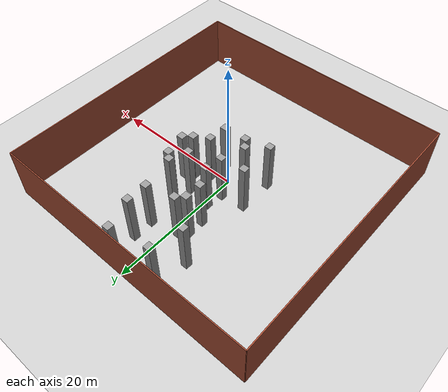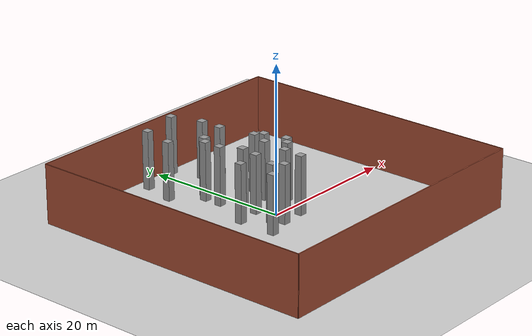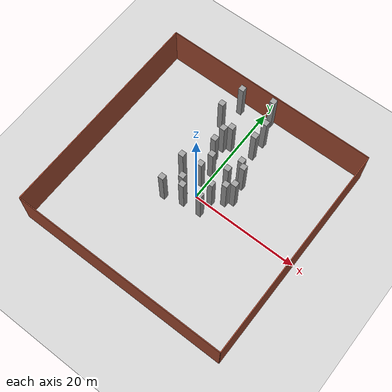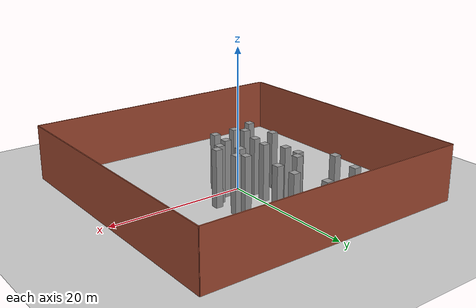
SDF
<sdf version="1.7">
 <world name="default">
  <model name="ground_plane">
   <static>1</static>
   <link name="link">
    <collision name="collision">
     <geometry><plane><normal>0 0 1</normal><size>100 100</size></plane></geometry>
     <surface>
      <contact><collide_bitmask>65535</collide_bitmask></contact>
      <friction><ode><mu>100</mu><mu2>50</mu2></ode></friction>
     </surface>
    </collision>
    <visual name="visual">
     <cast_shadows>0</cast_shadows>
     <geometry><plane><normal>0 0 1</normal><size>100 100</size></plane></geometry>
     <material>
      <script><uri>file://media/materials/scripts/gazebo.material</uri><name>Gazebo/Grey</name></script>
     </material>
    </visual>
   </link>
  </model>
  <model name="sim_room_square">
   <link name="Wall_14">
    <collision name="Wall_14_Collision">
     <geometry><box><size>40 0.15 8</size></box></geometry>
     <pose>0 0 4 0 -0 0</pose>
    </collision>
    <visual name="Wall_14_Visual">
     <pose>0 0 4 0 -0 0</pose>
     <geometry><box><size>40 0.15 8</size></box></geometry>
     <material>
      <script><uri>file://media/materials/scripts/gazebo.material</uri><name>Gazebo/Bricks</name></script>
      <ambient>1 1 1 1</ambient>
     </material>
     <meta><layer>0</layer></meta>
    </visual>
    <pose>20 -0 0 0 -0 -1.5708</pose>
   </link>
   <link name="Wall_15">
    <collision name="Wall_15_Collision">
     <geometry><box><size>40 0.15 8</size></box></geometry>
     <pose>0 0 4 0 -0 0</pose>
    </collision>
    <visual name="Wall_15_Visual">
     <pose>0 0 4 0 -0 0</pose>
     <geometry><box><size>40 0.15 8</size></box></geometry>
     <material>
      <script><uri>file://media/materials/scripts/gazebo.material</uri><name>Gazebo/Bricks</name></script>
      <ambient>1 1 1 1</ambient>
     </material>
     <meta><layer>0</layer></meta>
    </visual>
    <pose>0 -20 0 0 -0 3.14159</pose>
   </link>
   <link name="Wall_16">
    <collision name="Wall_16_Collision">
     <geometry><box><size>40 0.15 8</size></box></geometry>
     <pose>0 0 4 0 -0 0</pose>
    </collision>
    <visual name="Wall_16_Visual">
     <pose>0 0 4 0 -0 0</pose>
     <geometry><box><size>40 0.15 8</size></box></geometry>
     <material>
      <script><uri>file://media/materials/scripts/gazebo.material</uri><name>Gazebo/Bricks</name></script>
      <ambient>1 1 1 1</ambient>
     </material>
     <meta><layer>0</layer></meta>
    </visual>
    <pose>-20 -0 0 0 -0 1.5708</pose>
   </link>
   <link name="Wall_19">
    <collision name="Wall_19_Collision">
     <geometry><box><size>40 0.15 8</size></box></geometry>
     <pose>0 0 4 0 -0 0</pose>
    </collision>
    <visual name="Wall_19_Visual">
     <pose>0 0 4 0 -0 0</pose>
     <geometry><box><size>40 0.15 8</size></box></geometry>
     <material>
      <script><uri>file://media/materials/scripts/gazebo.material</uri><name>Gazebo/Bricks</name></script>
      <ambient>1 1 1 1</ambient>
     </material>
     <meta><layer>0</layer></meta>
    </visual>
    <pose>0 20 0 0 -0 0</pose>
   </link>
   <static>1</static>
  </model>
  <model name="unit_box_static95_clone_52_clone_clone">
   <link name="link">
    <inertial>
     <mass>1</mass>
     <inertia>
      <ixx>0.166667</ixx>
      <ixy>0</ixy>
      <ixz>0</ixz>
      <iyy>0.166667</iyy>
      <iyz>0</iyz>
      <izz>0.166667</izz>
     </inertia>
    </inertial>
    <visual name="visual">
     <geometry><box><size>1 1 8</size></box></geometry>
     <material>
      <script><name>Gazebo/Grey</name><uri>file://media/materials/scripts/gazebo.material</uri></script>
      <shader type="pixel"/>
     </material>
    </visual>
    <collision name="collision">
     <geometry><box><size>1 1 8</size></box></geometry>
     <surface>
      <friction>
       <ode><mu>1</mu><mu2>1</mu2><fdir1>0 0 0</fdir1><slip1>0</slip1><slip2>0</slip2></ode>
       <torsional>
        <coefficient>1</coefficient>
        <patch_radius>0</patch_radius>
        <surface_radius>0</surface_radius>
        <use_patch_radius>1</use_patch_radius>
        <ode><slip>0</slip></ode>
       </torsional>
      </friction>
      <bounce><restitution_coefficient>0</restitution_coefficient><threshold>1e+06</threshold></bounce>
      <contact>
       <collide_without_contact>0</collide_without_contact>
       <collide_without_contact_bitmask>1</collide_without_contact_bitmask>
       <collide_bitmask>1</collide_bitmask>
       <ode>
        <soft_cfm>0</soft_cfm>
        <soft_erp>0.2</soft_erp>
        <kp>1e+13</kp>
        <kd>1</kd>
        <max_vel>0.01</max_vel>
        <min_depth>0</min_depth>
       </ode>
       <bullet>
        <split_impulse>1</split_impulse>
        <split_impulse_penetration_threshold>-0.01</split_impulse_penetration_threshold>
        <soft_cfm>0</soft_cfm>
        <soft_erp>0.2</soft_erp>
        <kp>1e+13</kp>
        <kd>1</kd>
       </bullet>
      </contact>
     </surface>
    </collision>
   </link>
   <static>1</static>
   <pose>3 4.46583 4 0 -0 0</pose>
  </model>
  <model name="unit_box_static95_clone_52_clone_clone_0">
   <link name="link">
    <inertial>
     <mass>1</mass>
     <inertia>
      <ixx>0.166667</ixx>
      <ixy>0</ixy>
      <ixz>0</ixz>
      <iyy>0.166667</iyy>
      <iyz>0</iyz>
      <izz>0.166667</izz>
     </inertia>
    </inertial>
    <visual name="visual">
     <geometry><box><size>1 1 8</size></box></geometry>
     <material>
      <script><name>Gazebo/Grey</name><uri>file://media/materials/scripts/gazebo.material</uri></script>
      <shader type="pixel"/>
     </material>
    </visual>
    <collision name="collision">
     <geometry><box><size>1 1 8</size></box></geometry>
     <surface>
      <friction>
       <ode><mu>1</mu><mu2>1</mu2><fdir1>0 0 0</fdir1><slip1>0</slip1><slip2>0</slip2></ode>
       <torsional>
        <coefficient>1</coefficient>
        <patch_radius>0</patch_radius>
        <surface_radius>0</surface_radius>
        <use_patch_radius>1</use_patch_radius>
        <ode><slip>0</slip></ode>
       </torsional>
      </friction>
      <bounce><restitution_coefficient>0</restitution_coefficient><threshold>1e+06</threshold></bounce>
      <contact>
       <collide_without_contact>0</collide_without_contact>
       <collide_without_contact_bitmask>1</collide_without_contact_bitmask>
       <collide_bitmask>1</collide_bitmask>
       <ode>
        <soft_cfm>0</soft_cfm>
        <soft_erp>0.2</soft_erp>
        <kp>1e+13</kp>
        <kd>1</kd>
        <max_vel>0.01</max_vel>
        <min_depth>0</min_depth>
       </ode>
       <bullet>
        <split_impulse>1</split_impulse>
        <split_impulse_penetration_threshold>-0.01</split_impulse_penetration_threshold>
        <soft_cfm>0</soft_cfm>
        <soft_erp>0.2</soft_erp>
        <kp>1e+13</kp>
        <kd>1</kd>
       </bullet>
      </contact>
     </surface>
    </collision>
   </link>
   <static>1</static>
   <pose>-0.575145 5 4 0 -0 0</pose>
  </model>
  <model name="unit_box_static95_clone_52_clone_clone_1">
   <link name="link">
    <inertial>
     <mass>1</mass>
     <inertia>
      <ixx>0.166667</ixx>
      <ixy>0</ixy>
      <ixz>0</ixz>
      <iyy>0.166667</iyy>
      <iyz>0</iyz>
      <izz>0.166667</izz>
     </inertia>
    </inertial>
    <visual name="visual">
     <geometry><box><size>1 1 8</size></box></geometry>
     <material>
      <script><name>Gazebo/Grey</name><uri>file://media/materials/scripts/gazebo.material</uri></script>
      <shader type="pixel"/>
     </material>
    </visual>
    <collision name="collision">
     <geometry><box><size>1 1 8</size></box></geometry>
     <surface>
      <friction>
       <ode><mu>1</mu><mu2>1</mu2><fdir1>0 0 0</fdir1><slip1>0</slip1><slip2>0</slip2></ode>
       <torsional>
        <coefficient>1</coefficient>
        <patch_radius>0</patch_radius>
        <surface_radius>0</surface_radius>
        <use_patch_radius>1</use_patch_radius>
        <ode><slip>0</slip></ode>
       </torsional>
      </friction>
      <bounce><restitution_coefficient>0</restitution_coefficient><threshold>1e+06</threshold></bounce>
      <contact>
       <collide_without_contact>0</collide_without_contact>
       <collide_without_contact_bitmask>1</collide_without_contact_bitmask>
       <collide_bitmask>1</collide_bitmask>
       <ode>
        <soft_cfm>0</soft_cfm>
        <soft_erp>0.2</soft_erp>
        <kp>1e+13</kp>
        <kd>1</kd>
        <max_vel>0.01</max_vel>
        <min_depth>0</min_depth>
       </ode>
       <bullet>
        <split_impulse>1</split_impulse>
        <split_impulse_penetration_threshold>-0.01</split_impulse_penetration_threshold>
        <soft_cfm>0</soft_cfm>
        <soft_erp>0.2</soft_erp>
        <kp>1e+13</kp>
        <kd>1</kd>
       </bullet>
      </contact>
     </surface>
    </collision>
   </link>
   <static>1</static>
   <pose>-2 7.57838 4 0 -0 0</pose>
  </model>
  <model name="unit_box_static95_clone_52_clone_clone_12">
   <link name="link">
    <inertial>
     <mass>1</mass>
     <inertia>
      <ixx>0.166667</ixx>
      <ixy>0</ixy>
      <ixz>0</ixz>
      <iyy>0.166667</iyy>
      <iyz>0</iyz>
      <izz>0.166667</izz>
     </inertia>
    </inertial>
    <visual name="visual">
     <geometry><box><size>1 1 8</size></box></geometry>
     <material>
      <script><name>Gazebo/Grey</name><uri>file://media/materials/scripts/gazebo.material</uri></script>
      <shader type="pixel"/>
     </material>
    </visual>
    <collision name="collision">
     <geometry><box><size>1 1 8</size></box></geometry>
     <surface>
      <friction>
       <ode><mu>1</mu><mu2>1</mu2><fdir1>0 0 0</fdir1><slip1>0</slip1><slip2>0</slip2></ode>
       <torsional>
        <coefficient>1</coefficient>
        <patch_radius>0</patch_radius>
        <surface_radius>0</surface_radius>
        <use_patch_radius>1</use_patch_radius>
        <ode><slip>0</slip></ode>
       </torsional>
      </friction>
      <bounce><restitution_coefficient>0</restitution_coefficient><threshold>1e+06</threshold></bounce>
      <contact>
       <collide_without_contact>0</collide_without_contact>
       <collide_without_contact_bitmask>1</collide_without_contact_bitmask>
       <collide_bitmask>1</collide_bitmask>
       <ode>
        <soft_cfm>0</soft_cfm>
        <soft_erp>0.2</soft_erp>
        <kp>1e+13</kp>
        <kd>1</kd>
        <max_vel>0.01</max_vel>
        <min_depth>0</min_depth>
       </ode>
       <bullet>
        <split_impulse>1</split_impulse>
        <split_impulse_penetration_threshold>-0.01</split_impulse_penetration_threshold>
        <soft_cfm>0</soft_cfm>
        <soft_erp>0.2</soft_erp>
        <kp>1e+13</kp>
        <kd>1</kd>
       </bullet>
      </contact>
     </surface>
    </collision>
   </link>
   <static>1</static>
   <pose>-2 10 4 0 -0 0</pose>
  </model>
  <model name="unit_box_static95_clone_52_clone_clone_14">
   <link name="link">
    <inertial>
     <mass>1</mass>
     <inertia>
      <ixx>0.166667</ixx>
      <ixy>0</ixy>
      <ixz>0</ixz>
      <iyy>0.166667</iyy>
      <iyz>0</iyz>
      <izz>0.166667</izz>
     </inertia>
    </inertial>
    <visual name="visual">
     <geometry><box><size>1 1 8</size></box></geometry>
     <material>
      <script><name>Gazebo/Grey</name><uri>file://media/materials/scripts/gazebo.material</uri></script>
      <shader type="pixel"/>
     </material>
    </visual>
    <collision name="collision">
     <geometry><box><size>1 1 8</size></box></geometry>
     <surface>
      <friction>
       <ode><mu>1</mu><mu2>1</mu2><fdir1>0 0 0</fdir1><slip1>0</slip1><slip2>0</slip2></ode>
       <torsional>
        <coefficient>1</coefficient>
        <patch_radius>0</patch_radius>
        <surface_radius>0</surface_radius>
        <use_patch_radius>1</use_patch_radius>
        <ode><slip>0</slip></ode>
       </torsional>
      </friction>
      <bounce><restitution_coefficient>0</restitution_coefficient><threshold>1e+06</threshold></bounce>
      <contact>
       <collide_without_contact>0</collide_without_contact>
       <collide_without_contact_bitmask>1</collide_without_contact_bitmask>
       <collide_bitmask>1</collide_bitmask>
       <ode>
        <soft_cfm>0</soft_cfm>
        <soft_erp>0.2</soft_erp>
        <kp>1e+13</kp>
        <kd>1</kd>
        <max_vel>0.01</max_vel>
        <min_depth>0</min_depth>
       </ode>
       <bullet>
        <split_impulse>1</split_impulse>
        <split_impulse_penetration_threshold>-0.01</split_impulse_penetration_threshold>
        <soft_cfm>0</soft_cfm>
        <soft_erp>0.2</soft_erp>
        <kp>1e+13</kp>
        <kd>1</kd>
       </bullet>
      </contact>
     </surface>
    </collision>
   </link>
   <static>1</static>
   <pose>5.58229 3 4 0 -0 0</pose>
  </model>
  <model name="unit_box_static95_clone_52_clone_clone_19">
   <link name="link">
    <inertial>
     <mass>1</mass>
     <inertia>
      <ixx>0.166667</ixx>
      <ixy>0</ixy>
      <ixz>0</ixz>
      <iyy>0.166667</iyy>
      <iyz>0</iyz>
      <izz>0.166667</izz>
     </inertia>
    </inertial>
    <visual name="visual">
     <geometry><box><size>1 1 8</size></box></geometry>
     <material>
      <script><name>Gazebo/Grey</name><uri>file://media/materials/scripts/gazebo.material</uri></script>
      <shader type="pixel"/>
     </material>
    </visual>
    <collision name="collision">
     <geometry><box><size>1 1 8</size></box></geometry>
     <surface>
      <friction>
       <ode><mu>1</mu><mu2>1</mu2><fdir1>0 0 0</fdir1><slip1>0</slip1><slip2>0</slip2></ode>
       <torsional>
        <coefficient>1</coefficient>
        <patch_radius>0</patch_radius>
        <surface_radius>0</surface_radius>
        <use_patch_radius>1</use_patch_radius>
        <ode><slip>0</slip></ode>
       </torsional>
      </friction>
      <bounce><restitution_coefficient>0</restitution_coefficient><threshold>1e+06</threshold></bounce>
      <contact>
       <collide_without_contact>0</collide_without_contact>
       <collide_without_contact_bitmask>1</collide_without_contact_bitmask>
       <collide_bitmask>1</collide_bitmask>
       <ode>
        <soft_cfm>0</soft_cfm>
        <soft_erp>0.2</soft_erp>
        <kp>1e+13</kp>
        <kd>1</kd>
        <max_vel>0.01</max_vel>
        <min_depth>0</min_depth>
       </ode>
       <bullet>
        <split_impulse>1</split_impulse>
        <split_impulse_penetration_threshold>-0.01</split_impulse_penetration_threshold>
        <soft_cfm>0</soft_cfm>
        <soft_erp>0.2</soft_erp>
        <kp>1e+13</kp>
        <kd>1</kd>
       </bullet>
      </contact>
     </surface>
    </collision>
   </link>
   <static>1</static>
   <pose>-1.06932 -2.20283 4 0 -0 0</pose>
  </model>
  <model name="unit_box_static95_clone_52_clone_clone_21">
   <link name="link">
    <inertial>
     <mass>1</mass>
     <inertia>
      <ixx>0.166667</ixx>
      <ixy>0</ixy>
      <ixz>0</ixz>
      <iyy>0.166667</iyy>
      <iyz>0</iyz>
      <izz>0.166667</izz>
     </inertia>
    </inertial>
    <visual name="visual">
     <geometry><box><size>1 1 8</size></box></geometry>
     <material>
      <script><name>Gazebo/Grey</name><uri>file://media/materials/scripts/gazebo.material</uri></script>
      <shader type="pixel"/>
     </material>
    </visual>
    <collision name="collision">
     <geometry><box><size>1 1 8</size></box></geometry>
     <surface>
      <friction>
       <ode><mu>1</mu><mu2>1</mu2><fdir1>0 0 0</fdir1><slip1>0</slip1><slip2>0</slip2></ode>
       <torsional>
        <coefficient>1</coefficient>
        <patch_radius>0</patch_radius>
        <surface_radius>0</surface_radius>
        <use_patch_radius>1</use_patch_radius>
        <ode><slip>0</slip></ode>
       </torsional>
      </friction>
      <bounce><restitution_coefficient>0</restitution_coefficient><threshold>1e+06</threshold></bounce>
      <contact>
       <collide_without_contact>0</collide_without_contact>
       <collide_without_contact_bitmask>1</collide_without_contact_bitmask>
       <collide_bitmask>1</collide_bitmask>
       <ode>
        <soft_cfm>0</soft_cfm>
        <soft_erp>0.2</soft_erp>
        <kp>1e+13</kp>
        <kd>1</kd>
        <max_vel>0.01</max_vel>
        <min_depth>0</min_depth>
       </ode>
       <bullet>
        <split_impulse>1</split_impulse>
        <split_impulse_penetration_threshold>-0.01</split_impulse_penetration_threshold>
        <soft_cfm>0</soft_cfm>
        <soft_erp>0.2</soft_erp>
        <kp>1e+13</kp>
        <kd>1</kd>
       </bullet>
      </contact>
     </surface>
    </collision>
   </link>
   <static>1</static>
   <pose>-4.45541 -3.17541 4 0 -0 0</pose>
  </model>
  <model name="unit_box_static95_clone_52_clone_clone_46">
   <link name="link">
    <inertial>
     <mass>1</mass>
     <inertia>
      <ixx>0.166667</ixx>
      <ixy>0</ixy>
      <ixz>0</ixz>
      <iyy>0.166667</iyy>
      <iyz>0</iyz>
      <izz>0.166667</izz>
     </inertia>
    </inertial>
    <visual name="visual">
     <geometry><box><size>1 1 8</size></box></geometry>
     <material>
      <script><name>Gazebo/Grey</name><uri>file://media/materials/scripts/gazebo.material</uri></script>
      <shader type="pixel"/>
     </material>
    </visual>
    <collision name="collision">
     <geometry><box><size>1 1 8</size></box></geometry>
     <surface>
      <friction>
       <ode><mu>1</mu><mu2>1</mu2><fdir1>0 0 0</fdir1><slip1>0</slip1><slip2>0</slip2></ode>
       <torsional>
        <coefficient>1</coefficient>
        <patch_radius>0</patch_radius>
        <surface_radius>0</surface_radius>
        <use_patch_radius>1</use_patch_radius>
        <ode><slip>0</slip></ode>
       </torsional>
      </friction>
      <bounce><restitution_coefficient>0</restitution_coefficient><threshold>1e+06</threshold></bounce>
      <contact>
       <collide_without_contact>0</collide_without_contact>
       <collide_without_contact_bitmask>1</collide_without_contact_bitmask>
       <collide_bitmask>1</collide_bitmask>
       <ode>
        <soft_cfm>0</soft_cfm>
        <soft_erp>0.2</soft_erp>
        <kp>1e+13</kp>
        <kd>1</kd>
        <max_vel>0.01</max_vel>
        <min_depth>0</min_depth>
       </ode>
       <bullet>
        <split_impulse>1</split_impulse>
        <split_impulse_penetration_threshold>-0.01</split_impulse_penetration_threshold>
        <soft_cfm>0</soft_cfm>
        <soft_erp>0.2</soft_erp>
        <kp>1e+13</kp>
        <kd>1</kd>
       </bullet>
      </contact>
     </surface>
    </collision>
   </link>
   <static>1</static>
   <pose>2.54094 0.722864 4 0 -0 0</pose>
  </model>
  <model name="unit_box_static95_clone_52_clone_clone_53">
   <link name="link">
    <inertial>
     <mass>1</mass>
     <inertia>
      <ixx>0.166667</ixx>
      <ixy>0</ixy>
      <ixz>0</ixz>
      <iyy>0.166667</iyy>
      <iyz>0</iyz>
      <izz>0.166667</izz>
     </inertia>
    </inertial>
    <visual name="visual">
     <geometry><box><size>1 1 8</size></box></geometry>
     <material>
      <script><name>Gazebo/Grey</name><uri>file://media/materials/scripts/gazebo.material</uri></script>
      <shader type="pixel"/>
     </material>
    </visual>
    <collision name="collision">
     <geometry><box><size>1 1 8</size></box></geometry>
     <surface>
      <friction>
       <ode><mu>1</mu><mu2>1</mu2><fdir1>0 0 0</fdir1><slip1>0</slip1><slip2>0</slip2></ode>
       <torsional>
        <coefficient>1</coefficient>
        <patch_radius>0</patch_radius>
        <surface_radius>0</surface_radius>
        <use_patch_radius>1</use_patch_radius>
        <ode><slip>0</slip></ode>
       </torsional>
      </friction>
      <bounce><restitution_coefficient>0</restitution_coefficient><threshold>1e+06</threshold></bounce>
      <contact>
       <collide_without_contact>0</collide_without_contact>
       <collide_without_contact_bitmask>1</collide_without_contact_bitmask>
       <collide_bitmask>1</collide_bitmask>
       <ode>
        <soft_cfm>0</soft_cfm>
        <soft_erp>0.2</soft_erp>
        <kp>1e+13</kp>
        <kd>1</kd>
        <max_vel>0.01</max_vel>
        <min_depth>0</min_depth>
       </ode>
       <bullet>
        <split_impulse>1</split_impulse>
        <split_impulse_penetration_threshold>-0.01</split_impulse_penetration_threshold>
        <soft_cfm>0</soft_cfm>
        <soft_erp>0.2</soft_erp>
        <kp>1e+13</kp>
        <kd>1</kd>
       </bullet>
      </contact>
     </surface>
    </collision>
   </link>
   <static>1</static>
   <pose>3 12 4 0 -0 0</pose>
  </model>
  <model name="unit_box_static95_clone_52_clone_clone_60">
   <link name="link">
    <inertial>
     <mass>1</mass>
     <inertia>
      <ixx>0.166667</ixx>
      <ixy>0</ixy>
      <ixz>0</ixz>
      <iyy>0.166667</iyy>
      <iyz>0</iyz>
      <izz>0.166667</izz>
     </inertia>
    </inertial>
    <visual name="visual">
     <geometry><box><size>1 1 8</size></box></geometry>
     <material>
      <script><name>Gazebo/Grey</name><uri>file://media/materials/scripts/gazebo.material</uri></script>
      <shader type="pixel"/>
     </material>
    </visual>
    <collision name="collision">
     <geometry><box><size>1 1 8</size></box></geometry>
     <surface>
      <friction>
       <ode><mu>1</mu><mu2>1</mu2><fdir1>0 0 0</fdir1><slip1>0</slip1><slip2>0</slip2></ode>
       <torsional>
        <coefficient>1</coefficient>
        <patch_radius>0</patch_radius>
        <surface_radius>0</surface_radius>
        <use_patch_radius>1</use_patch_radius>
        <ode><slip>0</slip></ode>
       </torsional>
      </friction>
      <bounce><restitution_coefficient>0</restitution_coefficient><threshold>1e+06</threshold></bounce>
      <contact>
       <collide_without_contact>0</collide_without_contact>
       <collide_without_contact_bitmask>1</collide_without_contact_bitmask>
       <collide_bitmask>1</collide_bitmask>
       <ode>
        <soft_cfm>0</soft_cfm>
        <soft_erp>0.2</soft_erp>
        <kp>1e+13</kp>
        <kd>1</kd>
        <max_vel>0.01</max_vel>
        <min_depth>0</min_depth>
       </ode>
       <bullet>
        <split_impulse>1</split_impulse>
        <split_impulse_penetration_threshold>-0.01</split_impulse_penetration_threshold>
        <soft_cfm>0</soft_cfm>
        <soft_erp>0.2</soft_erp>
        <kp>1e+13</kp>
        <kd>1</kd>
       </bullet>
      </contact>
     </surface>
    </collision>
   </link>
   <static>1</static>
   <pose>3 15 4 0 -0 0</pose>
  </model>
  <model name="unit_box_static95_clone_52_clone_clone_63">
   <link name="link">
    <inertial>
     <mass>1</mass>
     <inertia>
      <ixx>0.166667</ixx>
      <ixy>0</ixy>
      <ixz>0</ixz>
      <iyy>0.166667</iyy>
      <iyz>0</iyz>
      <izz>0.166667</izz>
     </inertia>
    </inertial>
    <visual name="visual">
     <geometry><box><size>1 1 8</size></box></geometry>
     <material>
      <script><name>Gazebo/Grey</name><uri>file://media/materials/scripts/gazebo.material</uri></script>
      <shader type="pixel"/>
     </material>
    </visual>
    <collision name="collision">
     <geometry><box><size>1 1 8</size></box></geometry>
     <surface>
      <friction>
       <ode><mu>1</mu><mu2>1</mu2><fdir1>0 0 0</fdir1><slip1>0</slip1><slip2>0</slip2></ode>
       <torsional>
        <coefficient>1</coefficient>
        <patch_radius>0</patch_radius>
        <surface_radius>0</surface_radius>
        <use_patch_radius>1</use_patch_radius>
        <ode><slip>0</slip></ode>
       </torsional>
      </friction>
      <bounce><restitution_coefficient>0</restitution_coefficient><threshold>1e+06</threshold></bounce>
      <contact>
       <collide_without_contact>0</collide_without_contact>
       <collide_without_contact_bitmask>1</collide_without_contact_bitmask>
       <collide_bitmask>1</collide_bitmask>
       <ode>
        <soft_cfm>0</soft_cfm>
        <soft_erp>0.2</soft_erp>
        <kp>1e+13</kp>
        <kd>1</kd>
        <max_vel>0.01</max_vel>
        <min_depth>0</min_depth>
       </ode>
       <bullet>
        <split_impulse>1</split_impulse>
        <split_impulse_penetration_threshold>-0.01</split_impulse_penetration_threshold>
        <soft_cfm>0</soft_cfm>
        <soft_erp>0.2</soft_erp>
        <kp>1e+13</kp>
        <kd>1</kd>
       </bullet>
      </contact>
     </surface>
    </collision>
   </link>
   <static>1</static>
   <pose>-5 13.5916 4 0 -0 0</pose>
  </model>
  <model name="unit_box_static95_clone_52_clone_clone_74">
   <link name="link">
    <inertial>
     <mass>1</mass>
     <inertia>
      <ixx>0.166667</ixx>
      <ixy>0</ixy>
      <ixz>0</ixz>
      <iyy>0.166667</iyy>
      <iyz>0</iyz>
      <izz>0.166667</izz>
     </inertia>
    </inertial>
    <visual name="visual">
     <geometry><box><size>1 1 8</size></box></geometry>
     <material>
      <script><name>Gazebo/Grey</name><uri>file://media/materials/scripts/gazebo.material</uri></script>
      <shader type="pixel"/>
     </material>
    </visual>
    <collision name="collision">
     <geometry><box><size>1 1 8</size></box></geometry>
     <surface>
      <friction>
       <ode><mu>1</mu><mu2>1</mu2><fdir1>0 0 0</fdir1><slip1>0</slip1><slip2>0</slip2></ode>
       <torsional>
        <coefficient>1</coefficient>
        <patch_radius>0</patch_radius>
        <surface_radius>0</surface_radius>
        <use_patch_radius>1</use_patch_radius>
        <ode><slip>0</slip></ode>
       </torsional>
      </friction>
      <bounce><restitution_coefficient>0</restitution_coefficient><threshold>1e+06</threshold></bounce>
      <contact>
       <collide_without_contact>0</collide_without_contact>
       <collide_without_contact_bitmask>1</collide_without_contact_bitmask>
       <collide_bitmask>1</collide_bitmask>
       <ode>
        <soft_cfm>0</soft_cfm>
        <soft_erp>0.2</soft_erp>
        <kp>1e+13</kp>
        <kd>1</kd>
        <max_vel>0.01</max_vel>
        <min_depth>0</min_depth>
       </ode>
       <bullet>
        <split_impulse>1</split_impulse>
        <split_impulse_penetration_threshold>-0.01</split_impulse_penetration_threshold>
        <soft_cfm>0</soft_cfm>
        <soft_erp>0.2</soft_erp>
        <kp>1e+13</kp>
        <kd>1</kd>
       </bullet>
      </contact>
     </surface>
    </collision>
   </link>
   <static>1</static>
   <pose>-1 11 4 0 -0 0</pose>
  </model>
  <model name="unit_box_static95_clone_52_clone_clone_75">
   <link name="link">
    <inertial>
     <mass>1</mass>
     <inertia>
      <ixx>0.166667</ixx>
      <ixy>0</ixy>
      <ixz>0</ixz>
      <iyy>0.166667</iyy>
      <iyz>0</iyz>
      <izz>0.166667</izz>
     </inertia>
    </inertial>
    <visual name="visual">
     <geometry><box><size>1 1 8</size></box></geometry>
     <material>
      <script><name>Gazebo/Grey</name><uri>file://media/materials/scripts/gazebo.material</uri></script>
      <shader type="pixel"/>
     </material>
    </visual>
    <collision name="collision">
     <geometry><box><size>1 1 8</size></box></geometry>
     <surface>
      <friction>
       <ode><mu>1</mu><mu2>1</mu2><fdir1>0 0 0</fdir1><slip1>0</slip1><slip2>0</slip2></ode>
       <torsional>
        <coefficient>1</coefficient>
        <patch_radius>0</patch_radius>
        <surface_radius>0</surface_radius>
        <use_patch_radius>1</use_patch_radius>
        <ode><slip>0</slip></ode>
       </torsional>
      </friction>
      <bounce><restitution_coefficient>0</restitution_coefficient><threshold>1e+06</threshold></bounce>
      <contact>
       <collide_without_contact>0</collide_without_contact>
       <collide_without_contact_bitmask>1</collide_without_contact_bitmask>
       <collide_bitmask>1</collide_bitmask>
       <ode>
        <soft_cfm>0</soft_cfm>
        <soft_erp>0.2</soft_erp>
        <kp>1e+13</kp>
        <kd>1</kd>
        <max_vel>0.01</max_vel>
        <min_depth>0</min_depth>
       </ode>
       <bullet>
        <split_impulse>1</split_impulse>
        <split_impulse_penetration_threshold>-0.01</split_impulse_penetration_threshold>
        <soft_cfm>0</soft_cfm>
        <soft_erp>0.2</soft_erp>
        <kp>1e+13</kp>
        <kd>1</kd>
       </bullet>
      </contact>
     </surface>
    </collision>
   </link>
   <static>1</static>
   <pose>-4.43739 2 4 0 -0 0</pose>
  </model>
  <model name="unit_box_static95_clone_52_clone_clone_79">
   <link name="link">
    <inertial>
     <mass>1</mass>
     <inertia>
      <ixx>0.166667</ixx>
      <ixy>0</ixy>
      <ixz>0</ixz>
      <iyy>0.166667</iyy>
      <iyz>0</iyz>
      <izz>0.166667</izz>
     </inertia>
    </inertial>
    <visual name="visual">
     <geometry><box><size>1 1 8</size></box></geometry>
     <material>
      <script><name>Gazebo/Grey</name><uri>file://media/materials/scripts/gazebo.material</uri></script>
      <shader type="pixel"/>
     </material>
    </visual>
    <collision name="collision">
     <geometry><box><size>1 1 8</size></box></geometry>
     <surface>
      <friction>
       <ode><mu>1</mu><mu2>1</mu2><fdir1>0 0 0</fdir1><slip1>0</slip1><slip2>0</slip2></ode>
       <torsional>
        <coefficient>1</coefficient>
        <patch_radius>0</patch_radius>
        <surface_radius>0</surface_radius>
        <use_patch_radius>1</use_patch_radius>
        <ode><slip>0</slip></ode>
       </torsional>
      </friction>
      <bounce><restitution_coefficient>0</restitution_coefficient><threshold>1e+06</threshold></bounce>
      <contact>
       <collide_without_contact>0</collide_without_contact>
       <collide_without_contact_bitmask>1</collide_without_contact_bitmask>
       <collide_bitmask>1</collide_bitmask>
       <ode>
        <soft_cfm>0</soft_cfm>
        <soft_erp>0.2</soft_erp>
        <kp>1e+13</kp>
        <kd>1</kd>
        <max_vel>0.01</max_vel>
        <min_depth>0</min_depth>
       </ode>
       <bullet>
        <split_impulse>1</split_impulse>
        <split_impulse_penetration_threshold>-0.01</split_impulse_penetration_threshold>
        <soft_cfm>0</soft_cfm>
        <soft_erp>0.2</soft_erp>
        <kp>1e+13</kp>
        <kd>1</kd>
       </bullet>
      </contact>
     </surface>
    </collision>
   </link>
   <static>1</static>
   <pose>-1 2.50327 4 0 -0 0</pose>
  </model>
  <model name="unit_box_static95_clone_52_clone_clone_80">
   <link name="link">
    <inertial>
     <mass>1</mass>
     <inertia>
      <ixx>0.166667</ixx>
      <ixy>0</ixy>
      <ixz>0</ixz>
      <iyy>0.166667</iyy>
      <iyz>0</iyz>
      <izz>0.166667</izz>
     </inertia>
    </inertial>
    <visual name="visual">
     <geometry><box><size>1 1 8</size></box></geometry>
     <material>
      <script><name>Gazebo/Grey</name><uri>file://media/materials/scripts/gazebo.material</uri></script>
      <shader type="pixel"/>
     </material>
    </visual>
    <collision name="collision">
     <geometry><box><size>1 1 8</size></box></geometry>
     <surface>
      <friction>
       <ode><mu>1</mu><mu2>1</mu2><fdir1>0 0 0</fdir1><slip1>0</slip1><slip2>0</slip2></ode>
       <torsional>
        <coefficient>1</coefficient>
        <patch_radius>0</patch_radius>
        <surface_radius>0</surface_radius>
        <use_patch_radius>1</use_patch_radius>
        <ode><slip>0</slip></ode>
       </torsional>
      </friction>
      <bounce><restitution_coefficient>0</restitution_coefficient><threshold>1e+06</threshold></bounce>
      <contact>
       <collide_without_contact>0</collide_without_contact>
       <collide_without_contact_bitmask>1</collide_without_contact_bitmask>
       <collide_bitmask>1</collide_bitmask>
       <ode>
        <soft_cfm>0</soft_cfm>
        <soft_erp>0.2</soft_erp>
        <kp>1e+13</kp>
        <kd>1</kd>
        <max_vel>0.01</max_vel>
        <min_depth>0</min_depth>
       </ode>
       <bullet>
        <split_impulse>1</split_impulse>
        <split_impulse_penetration_threshold>-0.01</split_impulse_penetration_threshold>
        <soft_cfm>0</soft_cfm>
        <soft_erp>0.2</soft_erp>
        <kp>1e+13</kp>
        <kd>1</kd>
       </bullet>
      </contact>
     </surface>
    </collision>
   </link>
   <static>1</static>
   <pose>2.29872 -2 4 0 -0 0</pose>
  </model>
  <model name="unit_box_static95_clone_52_clone_clone_81">
   <link name="link">
    <inertial>
     <mass>1</mass>
     <inertia>
      <ixx>0.166667</ixx>
      <ixy>0</ixy>
      <ixz>0</ixz>
      <iyy>0.166667</iyy>
      <iyz>0</iyz>
      <izz>0.166667</izz>
     </inertia>
    </inertial>
    <visual name="visual">
     <geometry><box><size>1 1 8</size></box></geometry>
     <material>
      <script><name>Gazebo/Grey</name><uri>file://media/materials/scripts/gazebo.material</uri></script>
      <shader type="pixel"/>
     </material>
    </visual>
    <collision name="collision">
     <geometry><box><size>1 1 8</size></box></geometry>
     <surface>
      <friction>
       <ode><mu>1</mu><mu2>1</mu2><fdir1>0 0 0</fdir1><slip1>0</slip1><slip2>0</slip2></ode>
       <torsional>
        <coefficient>1</coefficient>
        <patch_radius>0</patch_radius>
        <surface_radius>0</surface_radius>
        <use_patch_radius>1</use_patch_radius>
        <ode><slip>0</slip></ode>
       </torsional>
      </friction>
      <bounce><restitution_coefficient>0</restitution_coefficient><threshold>1e+06</threshold></bounce>
      <contact>
       <collide_without_contact>0</collide_without_contact>
       <collide_without_contact_bitmask>1</collide_without_contact_bitmask>
       <collide_bitmask>1</collide_bitmask>
       <ode>
        <soft_cfm>0</soft_cfm>
        <soft_erp>0.2</soft_erp>
        <kp>1e+13</kp>
        <kd>1</kd>
        <max_vel>0.01</max_vel>
        <min_depth>0</min_depth>
       </ode>
       <bullet>
        <split_impulse>1</split_impulse>
        <split_impulse_penetration_threshold>-0.01</split_impulse_penetration_threshold>
        <soft_cfm>0</soft_cfm>
        <soft_erp>0.2</soft_erp>
        <kp>1e+13</kp>
        <kd>1</kd>
       </bullet>
      </contact>
     </surface>
    </collision>
   </link>
   <static>1</static>
   <pose>4.4898 2 4 0 -0 0</pose>
  </model>
  <model name="unit_box_static95_clone_52_clone_clone_113">
   <link name="link">
    <inertial>
     <mass>1</mass>
     <inertia>
      <ixx>0.166667</ixx>
      <ixy>0</ixy>
      <ixz>0</ixz>
      <iyy>0.166667</iyy>
      <iyz>0</iyz>
      <izz>0.166667</izz>
     </inertia>
    </inertial>
    <visual name="visual">
     <geometry><box><size>1 1 8</size></box></geometry>
     <material>
      <script><name>Gazebo/Grey</name><uri>file://media/materials/scripts/gazebo.material</uri></script>
      <shader type="pixel"/>
     </material>
    </visual>
    <collision name="collision">
     <geometry><box><size>1 1 8</size></box></geometry>
     <surface>
      <friction>
       <ode><mu>1</mu><mu2>1</mu2><fdir1>0 0 0</fdir1><slip1>0</slip1><slip2>0</slip2></ode>
       <torsional>
        <coefficient>1</coefficient>
        <patch_radius>0</patch_radius>
        <surface_radius>0</surface_radius>
        <use_patch_radius>1</use_patch_radius>
        <ode><slip>0</slip></ode>
       </torsional>
      </friction>
      <bounce><restitution_coefficient>0</restitution_coefficient><threshold>1e+06</threshold></bounce>
      <contact>
       <collide_without_contact>0</collide_without_contact>
       <collide_without_contact_bitmask>1</collide_without_contact_bitmask>
       <collide_bitmask>1</collide_bitmask>
       <ode>
        <soft_cfm>0</soft_cfm>
        <soft_erp>0.2</soft_erp>
        <kp>1e+13</kp>
        <kd>1</kd>
        <max_vel>0.01</max_vel>
        <min_depth>0</min_depth>
       </ode>
       <bullet>
        <split_impulse>1</split_impulse>
        <split_impulse_penetration_threshold>-0.01</split_impulse_penetration_threshold>
        <soft_cfm>0</soft_cfm>
        <soft_erp>0.2</soft_erp>
        <kp>1e+13</kp>
        <kd>1</kd>
       </bullet>
      </contact>
     </surface>
    </collision>
   </link>
   <static>1</static>
   <pose>4 7 4 0 -0 0</pose>
  </model>
  <model name="unit_box_static95_clone_52_clone_clone_119">
   <link name="link">
    <inertial>
     <mass>1</mass>
     <inertia>
      <ixx>0.166667</ixx>
      <ixy>0</ixy>
      <ixz>0</ixz>
      <iyy>0.166667</iyy>
      <iyz>0</iyz>
      <izz>0.166667</izz>
     </inertia>
    </inertial>
    <visual name="visual">
     <geometry><box><size>1 1 8</size></box></geometry>
     <material>
      <script><name>Gazebo/Grey</name><uri>file://media/materials/scripts/gazebo.material</uri></script>
      <shader type="pixel"/>
     </material>
    </visual>
    <collision name="collision">
     <geometry><box><size>1 1 8</size></box></geometry>
     <surface>
      <friction>
       <ode><mu>1</mu><mu2>1</mu2><fdir1>0 0 0</fdir1><slip1>0</slip1><slip2>0</slip2></ode>
       <torsional>
        <coefficient>1</coefficient>
        <patch_radius>0</patch_radius>
        <surface_radius>0</surface_radius>
        <use_patch_radius>1</use_patch_radius>
        <ode><slip>0</slip></ode>
       </torsional>
      </friction>
      <bounce><restitution_coefficient>0</restitution_coefficient><threshold>1e+06</threshold></bounce>
      <contact>
       <collide_without_contact>0</collide_without_contact>
       <collide_without_contact_bitmask>1</collide_without_contact_bitmask>
       <collide_bitmask>1</collide_bitmask>
       <ode>
        <soft_cfm>0</soft_cfm>
        <soft_erp>0.2</soft_erp>
        <kp>1e+13</kp>
        <kd>1</kd>
        <max_vel>0.01</max_vel>
        <min_depth>0</min_depth>
       </ode>
       <bullet>
        <split_impulse>1</split_impulse>
        <split_impulse_penetration_threshold>-0.01</split_impulse_penetration_threshold>
        <soft_cfm>0</soft_cfm>
        <soft_erp>0.2</soft_erp>
        <kp>1e+13</kp>
        <kd>1</kd>
       </bullet>
      </contact>
     </surface>
    </collision>
   </link>
   <static>1</static>
   <pose>-4 18 4 0 -0 0</pose>
  </model>
  <model name="unit_box_static95_clone_52_clone_clone_78">
   <link name="link">
    <inertial>
     <mass>1</mass>
     <inertia>
      <ixx>0.166667</ixx>
      <ixy>0</ixy>
      <ixz>0</ixz>
      <iyy>0.166667</iyy>
      <iyz>0</iyz>
      <izz>0.166667</izz>
     </inertia>
    </inertial>
    <visual name="visual">
     <geometry><box><size>1 1 8</size></box></geometry>
     <material>
      <script><name>Gazebo/Grey</name><uri>file://media/materials/scripts/gazebo.material</uri></script>
      <shader type="pixel"/>
     </material>
    </visual>
    <collision name="collision">
     <geometry><box><size>1 1 8</size></box></geometry>
     <surface>
      <friction>
       <ode><mu>1</mu><mu2>1</mu2><fdir1>0 0 0</fdir1><slip1>0</slip1><slip2>0</slip2></ode>
       <torsional>
        <coefficient>1</coefficient>
        <patch_radius>0</patch_radius>
        <surface_radius>0</surface_radius>
        <use_patch_radius>1</use_patch_radius>
        <ode><slip>0</slip></ode>
       </torsional>
      </friction>
      <bounce><restitution_coefficient>0</restitution_coefficient><threshold>1e+06</threshold></bounce>
      <contact>
       <collide_without_contact>0</collide_without_contact>
       <collide_without_contact_bitmask>1</collide_without_contact_bitmask>
       <collide_bitmask>1</collide_bitmask>
       <ode>
        <soft_cfm>0</soft_cfm>
        <soft_erp>0.2</soft_erp>
        <kp>1e+13</kp>
        <kd>1</kd>
        <max_vel>0.01</max_vel>
        <min_depth>0</min_depth>
       </ode>
       <bullet>
        <split_impulse>1</split_impulse>
        <split_impulse_penetration_threshold>-0.01</split_impulse_penetration_threshold>
        <soft_cfm>0</soft_cfm>
        <soft_erp>0.2</soft_erp>
        <kp>1e+13</kp>
        <kd>1</kd>
       </bullet>
      </contact>
     </surface>
    </collision>
   </link>
   <static>1</static>
   <pose>-2 -1 4 0 -0 0</pose>
  </model>
  <model name="unit_box_static95_clone_52_clone_clone_133">
   <link name="link">
    <inertial>
     <mass>1</mass>
     <inertia>
      <ixx>0.166667</ixx>
      <ixy>0</ixy>
      <ixz>0</ixz>
      <iyy>0.166667</iyy>
      <iyz>0</iyz>
      <izz>0.166667</izz>
     </inertia>
    </inertial>
    <visual name="visual">
     <geometry><box><size>1 1 8</size></box></geometry>
     <material>
      <script><name>Gazebo/Grey</name><uri>file://media/materials/scripts/gazebo.material</uri></script>
      <shader type="pixel"/>
     </material>
    </visual>
    <collision name="collision">
     <geometry><box><size>1 1 8</size></box></geometry>
     <surface>
      <friction>
       <ode><mu>1</mu><mu2>1</mu2><fdir1>0 0 0</fdir1><slip1>0</slip1><slip2>0</slip2></ode>
       <torsional>
        <coefficient>1</coefficient>
        <patch_radius>0</patch_radius>
        <surface_radius>0</surface_radius>
        <use_patch_radius>1</use_patch_radius>
        <ode><slip>0</slip></ode>
       </torsional>
      </friction>
      <bounce><restitution_coefficient>0</restitution_coefficient><threshold>1e+06</threshold></bounce>
      <contact>
       <collide_without_contact>0</collide_without_contact>
       <collide_without_contact_bitmask>1</collide_without_contact_bitmask>
       <collide_bitmask>1</collide_bitmask>
       <ode>
        <soft_cfm>0</soft_cfm>
        <soft_erp>0.2</soft_erp>
        <kp>1e+13</kp>
        <kd>1</kd>
        <max_vel>0.01</max_vel>
        <min_depth>0</min_depth>
       </ode>
       <bullet>
        <split_impulse>1</split_impulse>
        <split_impulse_penetration_threshold>-0.01</split_impulse_penetration_threshold>
        <soft_cfm>0</soft_cfm>
        <soft_erp>0.2</soft_erp>
        <kp>1e+13</kp>
        <kd>1</kd>
       </bullet>
      </contact>
     </surface>
    </collision>
   </link>
   <static>1</static>
   <pose>4.91017 6.17943 4 0 -0 0</pose>
  </model>
  <model name="unit_box_static95_clone_52_clone_clone_135">
   <link name="link">
    <inertial>
     <mass>1</mass>
     <inertia>
      <ixx>0.166667</ixx>
      <ixy>0</ixy>
      <ixz>0</ixz>
      <iyy>0.166667</iyy>
      <iyz>0</iyz>
      <izz>0.166667</izz>
     </inertia>
    </inertial>
    <visual name="visual">
     <geometry><box><size>1 1 8</size></box></geometry>
     <material>
      <script><name>Gazebo/Grey</name><uri>file://media/materials/scripts/gazebo.material</uri></script>
      <shader type="pixel"/>
     </material>
    </visual>
    <collision name="collision">
     <geometry><box><size>1 1 8</size></box></geometry>
     <surface>
      <friction>
       <ode><mu>1</mu><mu2>1</mu2><fdir1>0 0 0</fdir1><slip1>0</slip1><slip2>0</slip2></ode>
       <torsional>
        <coefficient>1</coefficient>
        <patch_radius>0</patch_radius>
        <surface_radius>0</surface_radius>
        <use_patch_radius>1</use_patch_radius>
        <ode><slip>0</slip></ode>
       </torsional>
      </friction>
      <bounce><restitution_coefficient>0</restitution_coefficient><threshold>1e+06</threshold></bounce>
      <contact>
       <collide_without_contact>0</collide_without_contact>
       <collide_without_contact_bitmask>1</collide_without_contact_bitmask>
       <collide_bitmask>1</collide_bitmask>
       <ode>
        <soft_cfm>0</soft_cfm>
        <soft_erp>0.2</soft_erp>
        <kp>1e+13</kp>
        <kd>1</kd>
        <max_vel>0.01</max_vel>
        <min_depth>0</min_depth>
       </ode>
       <bullet>
        <split_impulse>1</split_impulse>
        <split_impulse_penetration_threshold>-0.01</split_impulse_penetration_threshold>
        <soft_cfm>0</soft_cfm>
        <soft_erp>0.2</soft_erp>
        <kp>1e+13</kp>
        <kd>1</kd>
       </bullet>
      </contact>
     </surface>
    </collision>
   </link>
   <static>1</static>
   <pose>1.63916 19.165 4 0 -0 0</pose>
  </model>
 </world>
</sdf>
